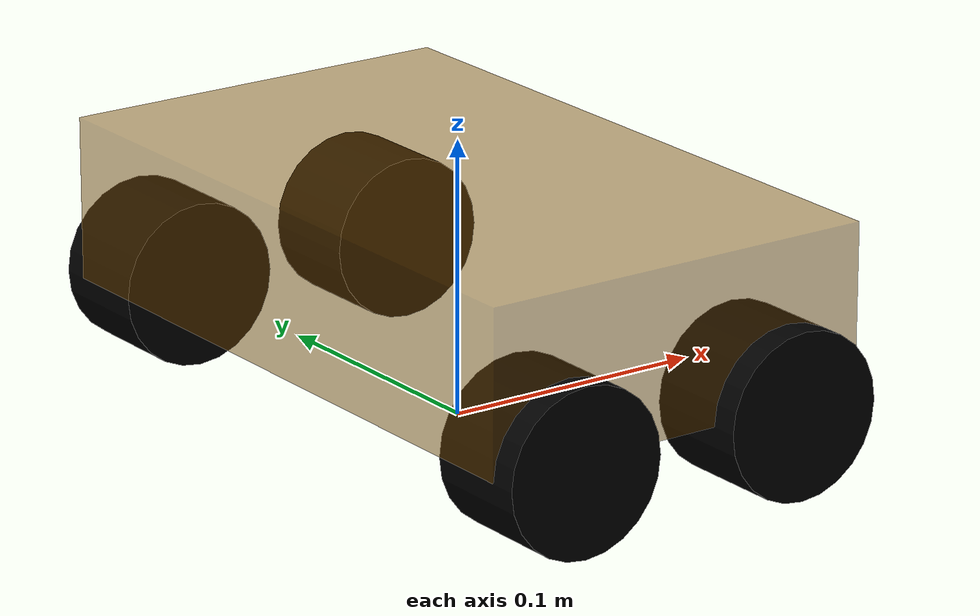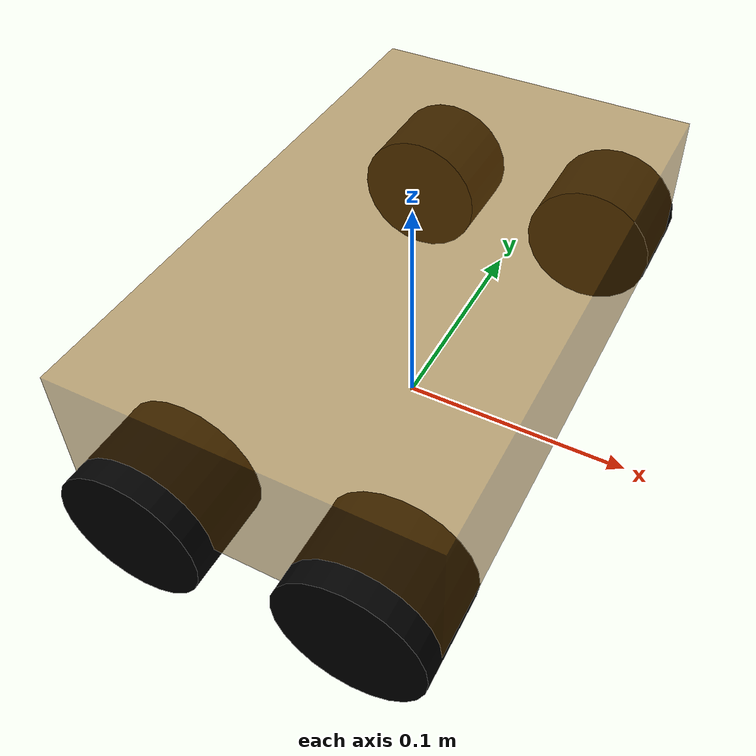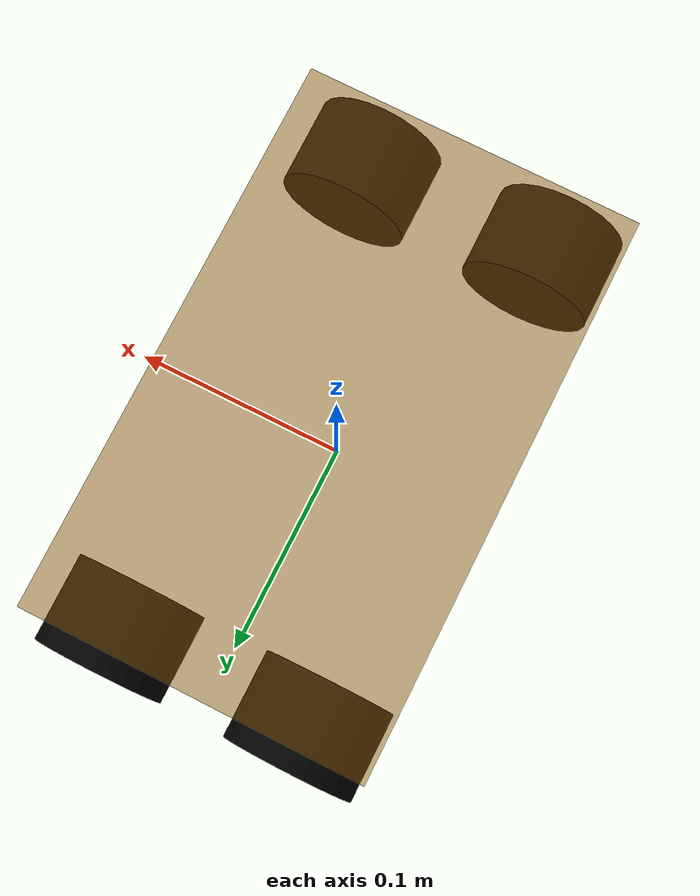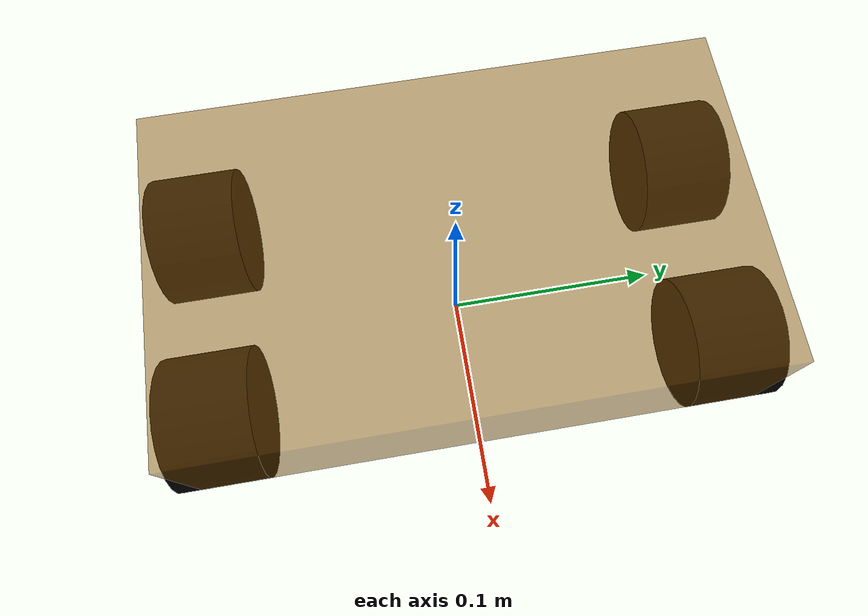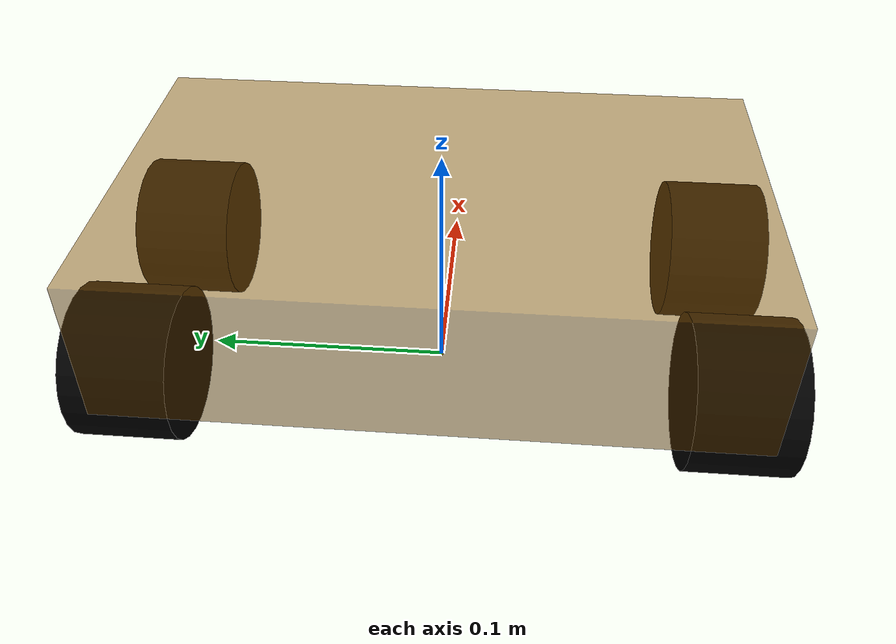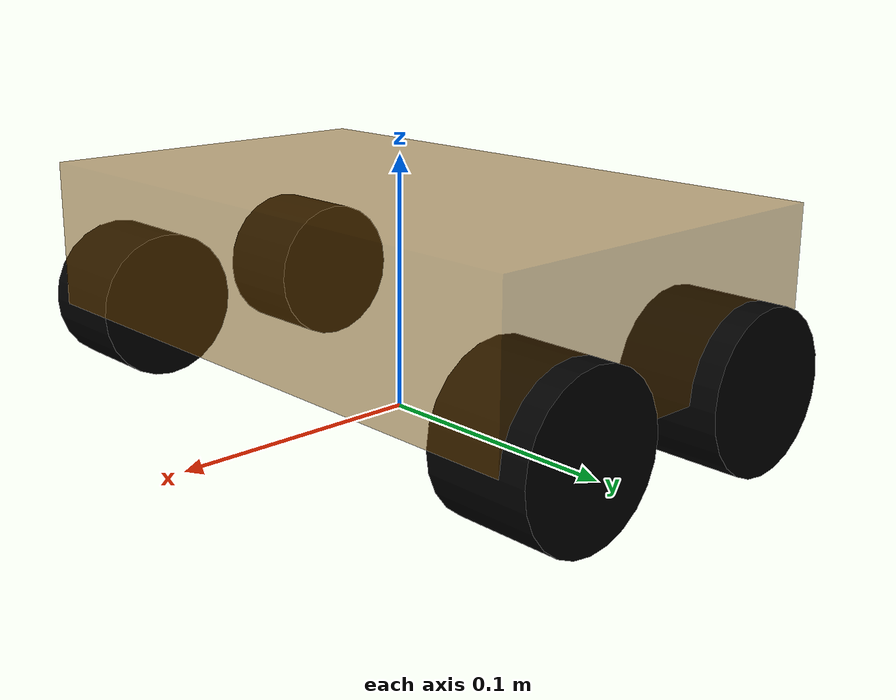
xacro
<?xml version="1.0"?>
<!-- 按照先后顺序组合my_car -->
<robot name="my_car" xmlns:xacro="http://wiki.ros.org/xacro">
    <!--惯性矩阵-->
    <xacro:include filename="inertial_matrix.xacro" />
    <!--本体-->
    <xacro:include filename="my_car_base_0.xacro" />
    <!--控制器-->
    <xacro:include filename="my_car_move.xacro" />

</robot>

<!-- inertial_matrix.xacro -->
<robot name="base" xmlns:xacro="http://wiki.ros.org/xacro">
    <!-- Macro for inertia matrix -->
    <xacro:macro name="sphere_inertial_matrix" params="m r">
        <inertial>
            <mass value="${m}" />
            <inertia ixx="${2*m*r*r/5}" ixy="0" ixz="0"
                iyy="${2*m*r*r/5}" iyz="0"
                izz="${2*m*r*r/5}" />
        </inertial>
    </xacro:macro>

    <xacro:macro name="cylinder_inertial_matrix" params="m r h">
        <inertial>
            <mass value="${m}" />
            <inertia ixx="${m*(3*r*r+h*h)/12}" ixy = "0" ixz = "0"
                iyy="${m*(3*r*r+h*h)/12}" iyz = "0"
                izz="${m*r*r/2}" />
        </inertial>
    </xacro:macro>

    <xacro:macro name="box_inertial_matrix" params="m l w h">
       <inertial>
               <mass value="${m}" />
               <inertia ixx="${m*(h*h + l*l)/12}" ixy = "0" ixz = "0"
                   iyy="${m*(w*w + l*l)/12}" iyz= "0"
                   izz="${m*(w*w + h*h)/12}" />
       </inertial>
   </xacro:macro>
</robot>

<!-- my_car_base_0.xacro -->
<!-- 根标签，必须声明 xmlns:xacro -->
<robot name="my_base" xmlns:xacro="http://www.ros.org/wiki/xacro">
    <!-- 封装变量、常量 -->
    <!-- PI 值设置精度需要高一些，否则后续车轮翻转量计算时，可能会出现肉眼不能察觉的车轮倾斜，从而导致模型抖动 -->
    <xacro:property name="PI" value="3.1415926"/>
    <!-- 宏:黑色设置 -->
    <material name="black">
        <color rgba="0.0 0.0 0.0 1.0" />
    </material>
    <!-- 底盘属性 -->
    <xacro:property name="base_footprint_radius" value="0.001" /> <!-- base_footprint 半径  -->
    <xacro:property name="base_link_x" value="0.15" /> <!-- base_link x -->
    <xacro:property name="base_link_y" value="0.25" /> <!-- base_link y -->
    <xacro:property name="base_link_z" value="0.06" /> <!-- base_link z -->
    <xacro:property name="base_link_m" value="5" /> <!-- 质量  -->
    <xacro:property name="earth_space" value="0.03" /> <!--离地距离-->
    <!-- 驱动轮属性 -->
    <xacro:property name="wheel_dis_x" value="0.09" /> <!--驱动轮沿baselink_x方向距离-->
    <xacro:property name="wheel_dis_y" value="0.23" /> <!--驱动轮沿baselink_y方向距离-->
    <xacro:property name="wheel_radius" value="0.03" /><!-- 半径 -->
    <xacro:property name="wheel_length" value="0.04" /><!-- 宽度 -->
    <xacro:property name="wheel_m" value="0.5" /> <!-- 质量  -->

    <!-- footprint -->
    <link name="base_footprint">
      <visual>
        <geometry>
          <sphere radius="${base_footprint_radius}" />
        </geometry>
      </visual>
    </link>
    <gazebo reference="base_footprint">
      <turnGravityOff>false</turnGravityOff> <!--关闭重力-->
    </gazebo>

    <!-- 底盘 -->
    <link name="base_link">
      <visual>
        <geometry>
          <box size="${base_link_x} ${base_link_y} ${base_link_z}" />
        </geometry>
        <origin xyz="0 0 0" rpy="0 0 0" />
        <material name="yellow">
          <color rgba="0.5 0.3 0.0 0.5" />
        </material>
      </visual>
      <collision>
        <geometry>
          <box size="${base_link_x} ${base_link_y} ${base_link_z}" />
        </geometry>
        <origin xyz="0 0 0" rpy="0 0 0" />
      </collision>
      <xacro:box_inertial_matrix m="${base_link_m}" l="${base_link_x}" w="${base_link_y}" h="${base_link_z}" />
    </link>

    <joint name="base_link2base_footprint" type="fixed">
      <parent link="base_footprint" />
      <child link="base_link" />
      <origin xyz="0 0 ${earth_space + base_link_z / 2 }" />
    </joint>

    <gazebo reference="base_link">
        <material>Gazebo/Yellow</material>
    </gazebo>

    <!-- 驱动轮 -->
    <xacro:macro name="add_wheels" params="wheel_name x_flag y_flag">
      <link name="${wheel_name}_wheel">
        <visual>
          <geometry>
            <cylinder radius="${wheel_radius}" length="${wheel_length}" />
          </geometry>
          <origin xyz="0.0 0.0 0.0" rpy="${PI / 2} 0.0 0.0" />
          <material name="black" />
        </visual>
        <collision>
          <geometry>
            <cylinder radius="${wheel_radius}" length="${wheel_length}" />
          </geometry>
          <origin xyz="0.0 0.0 0.0" rpy="${PI / 2} 0.0 0.0" />
        </collision>
        <xacro:cylinder_inertial_matrix m="${wheel_m}" r="${wheel_radius}" h="${wheel_length}" />
      </link>

      <joint name="${wheel_name}_wheel2base_link" type="continuous">
        <parent link="base_link" />
        <child link="${wheel_name}_wheel" />
        <origin xyz="${x_flag * wheel_dis_x *0.5} ${y_flag * wheel_dis_y *0.5} -0.030" />
        <axis xyz="0 1 0" />
      </joint>

      <gazebo reference="${wheel_name}_wheel">
        <material>Gazebo/Red</material>
      </gazebo>
    </xacro:macro>

    <xacro:add_wheels wheel_name="front_left" x_flag="1" y_flag="1" />
    <xacro:add_wheels wheel_name="front_right" x_flag="1" y_flag="-1" />
    <xacro:add_wheels wheel_name="back_left" x_flag="-1" y_flag="1" />
    <xacro:add_wheels wheel_name="back_right" x_flag="-1" y_flag="-1" />

</robot>
